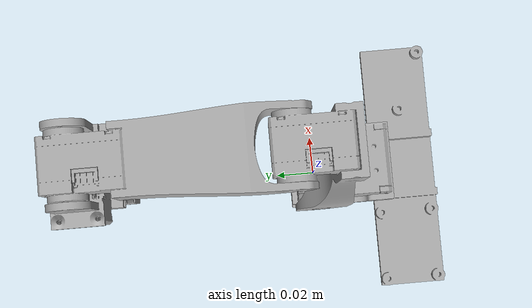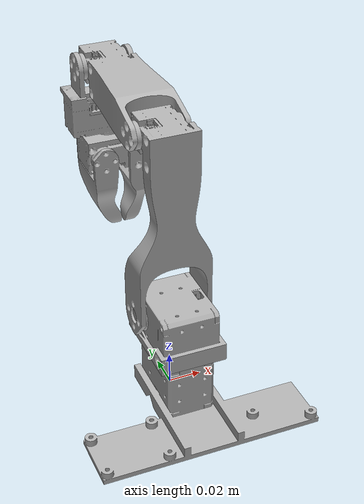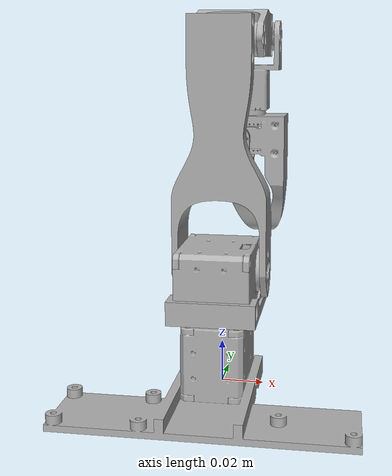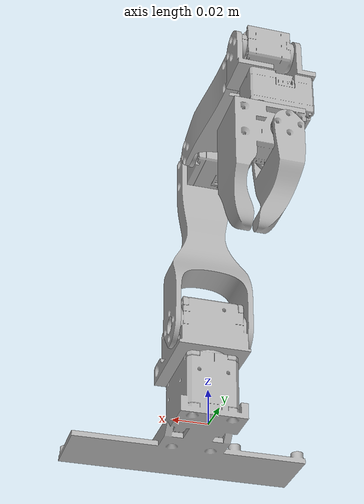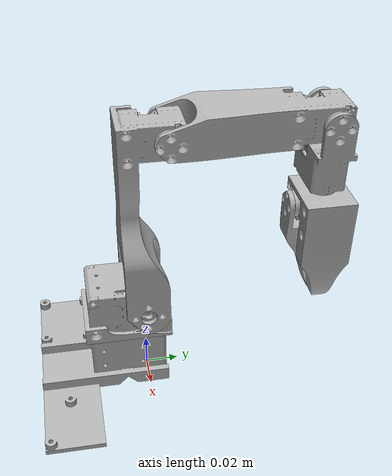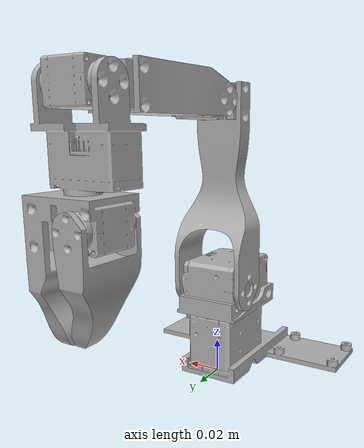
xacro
<?xml version="1.0" ?>
<robot name="low_cost_robot" xmlns:xacro="http://www.ros.org/wiki/xacro">

<xacro:include filename="$(find low_cost_robot_description)/urdf/materials.xacro" />
<xacro:include filename="$(find low_cost_robot_description)/urdf/low_cost_robot.trans" />
<xacro:include filename="$(find low_cost_robot_description)/urdf/low_cost_robot.gazebo" />
<link name="base_link">
  <inertial>
    <origin xyz="-0.00017023202404845418 -0.021341439639662032 0.014423161616418092" rpy="0 0 0"/>
    <mass value="0.5164575020815119"/>
    <inertia ixx="0.000304" iyy="0.000283" izz="0.000441" ixy="-2e-06" iyz="-6.2e-05" ixz="-1e-06"/>
  </inertial>
  <visual>
    <origin xyz="0 0 0" rpy="0 0 0"/>
    <geometry>
      <mesh filename="file://$(find low_cost_robot_description)/meshes/base_link.stl" scale="0.001 0.001 0.001"/>
    </geometry>
    <material name="silver"/>
  </visual>
  <collision>
    <origin xyz="0 0 0" rpy="0 0 0"/>
    <geometry>
      <mesh filename="file://$(find low_cost_robot_description)/meshes/base_link.stl" scale="0.001 0.001 0.001"/>
    </geometry>
  </collision>
</link>

<link name="link1_1">
  <inertial>
    <origin xyz="-0.0006216635769899589 -0.011914175885676576 0.015400174574576098" rpy="0 0 0"/>
    <mass value="0.3956063453928257"/>
    <inertia ixx="0.000112" iyy="7.5e-05" izz="0.000123" ixy="0.0" iyz="-1e-06" ixz="0.0"/>
  </inertial>
  <visual>
    <origin xyz="-0.0 -0.0 -0.039" rpy="0 0 0"/>
    <geometry>
      <mesh filename="file://$(find low_cost_robot_description)/meshes/link1_1.stl" scale="0.001 0.001 0.001"/>
    </geometry>
    <material name="silver"/>
  </visual>
  <collision>
    <origin xyz="-0.0 -0.0 -0.039" rpy="0 0 0"/>
    <geometry>
      <mesh filename="file://$(find low_cost_robot_description)/meshes/link1_1.stl" scale="0.001 0.001 0.001"/>
    </geometry>
  </collision>
</link>

<link name="link2_1">
  <inertial>
    <origin xyz="0.00015778948024297947 -0.0012168309893684582 0.07161179945761596" rpy="0 0 0"/>
    <mass value="0.3916070272991037"/>
    <inertia ixx="0.00052" iyy="0.000534" izz="8.4e-05" ixy="-1e-06" iyz="-3.7e-05" ixz="-2e-06"/>
  </inertial>
  <visual>
    <origin xyz="0.0002 0.0 -0.0563" rpy="0 0 0"/>
    <geometry>
      <mesh filename="file://$(find low_cost_robot_description)/meshes/link2_1.stl" scale="0.001 0.001 0.001"/>
    </geometry>
    <material name="silver"/>
  </visual>
  <collision>
    <origin xyz="0.0002 0.0 -0.0563" rpy="0 0 0"/>
    <geometry>
      <mesh filename="file://$(find low_cost_robot_description)/meshes/link2_1.stl" scale="0.001 0.001 0.001"/>
    </geometry>
  </collision>
</link>

<link name="link3_1">
  <inertial>
    <origin xyz="7.243666489899892e-05 0.05069893196527342 0.002850799344132765" rpy="0 0 0"/>
    <mass value="0.4404689720232285"/>
    <inertia ixx="0.000302" iyy="5.5e-05" izz="0.000322" ixy="-1e-06" iyz="-0.0" ixz="0.0"/>
  </inertial>
  <visual>
    <origin xyz="-5e-05 -0.014791 -0.164647" rpy="0 0 0"/>
    <geometry>
      <mesh filename="file://$(find low_cost_robot_description)/meshes/link3_1.stl" scale="0.001 0.001 0.001"/>
    </geometry>
    <material name="silver"/>
  </visual>
  <collision>
    <origin xyz="-5e-05 -0.014791 -0.164647" rpy="0 0 0"/>
    <geometry>
      <mesh filename="file://$(find low_cost_robot_description)/meshes/link3_1.stl" scale="0.001 0.001 0.001"/>
    </geometry>
  </collision>
</link>

<link name="link4_1">
  <inertial>
    <origin xyz="-0.00473855751324301 8.608301182447264e-06 -0.02657822907239915" rpy="0 0 0"/>
    <mass value="0.15464443104629289"/>
    <inertia ixx="2.4e-05" iyy="3.9e-05" izz="2.4e-05" ixy="0.0" iyz="0.0" ixz="-3e-06"/>
  </inertial>
  <visual>
    <origin xyz="-0.000175 -0.105258 -0.167394" rpy="0 0 0"/>
    <geometry>
      <mesh filename="file://$(find low_cost_robot_description)/meshes/link4_1.stl" scale="0.001 0.001 0.001"/>
    </geometry>
    <material name="silver"/>
  </visual>
  <collision>
    <origin xyz="-0.000175 -0.105258 -0.167394" rpy="0 0 0"/>
    <geometry>
      <mesh filename="file://$(find low_cost_robot_description)/meshes/link4_1.stl" scale="0.001 0.001 0.001"/>
    </geometry>
  </collision>
</link>

<link name="gripper_static_1">
  <inertial>
    <origin xyz="0.005441113698877747 0.00011563276687967528 -0.019052234932530082" rpy="0 0 0"/>
    <mass value="0.23008611256824127"/>
    <inertia ixx="6.9e-05" iyy="8.4e-05" izz="4.3e-05" ixy="-0.0" iyz="0.0" ixz="1.8e-05"/>
  </inertial>
  <visual>
    <origin xyz="-0.001528 -0.105265 -0.122394" rpy="0 0 0"/>
    <geometry>
      <mesh filename="file://$(find low_cost_robot_description)/meshes/gripper_static_1.stl" scale="0.001 0.001 0.001"/>
    </geometry>
    <material name="silver"/>
  </visual>
  <collision>
    <origin xyz="-0.001528 -0.105265 -0.122394" rpy="0 0 0"/>
    <geometry>
      <mesh filename="file://$(find low_cost_robot_description)/meshes/gripper_static_1.stl" scale="0.001 0.001 0.001"/>
    </geometry>
  </collision>
</link>

<link name="gripper_moving_1">
  <inertial>
    <origin xyz="0.0010956016218150169 0.00031090398683926435 -0.02511314835420593" rpy="0 0 0"/>
    <mass value="0.10060550172576842"/>
    <inertia ixx="2.7e-05" iyy="1.9e-05" izz="1.2e-05" ixy="-0.0" iyz="0.0" ixz="2e-06"/>
  </inertial>
  <visual>
    <origin xyz="0.005872 -0.105015 -0.109244" rpy="0 0 0"/>
    <geometry>
      <mesh filename="file://$(find low_cost_robot_description)/meshes/gripper_moving_1.stl" scale="0.001 0.001 0.001"/>
    </geometry>
    <material name="silver"/>
  </visual>
  <collision>
    <origin xyz="0.005872 -0.105015 -0.109244" rpy="0 0 0"/>
    <geometry>
      <mesh filename="file://$(find low_cost_robot_description)/meshes/gripper_moving_1.stl" scale="0.001 0.001 0.001"/>
    </geometry>
  </collision>
</link>

<joint name="joint1" type="continuous">
  <origin xyz="0.0 0.0 0.039" rpy="0 0 0"/>
  <parent link="base_link"/>
  <child link="link1_1"/>
  <axis xyz="0.0 0.0 1.0"/>
</joint>

<joint name="joint2" type="continuous">
  <origin xyz="-0.0002 -0.0 0.0173" rpy="0 0 0"/>
  <parent link="link1_1"/>
  <child link="link2_1"/>
  <axis xyz="-1.0 -0.0 0.0"/>
</joint>

<joint name="joint3" type="continuous">
  <origin xyz="0.00025 0.014791 0.108347" rpy="0 0 0"/>
  <parent link="link2_1"/>
  <child link="link3_1"/>
  <axis xyz="1.0 0.0 0.0"/>
</joint>

<joint name="joint4" type="continuous">
  <origin xyz="0.000125 0.090467 0.002747" rpy="0 0 0"/>
  <parent link="link3_1"/>
  <child link="link4_1"/>
  <axis xyz="1.0 0.0 0.0"/>
</joint>

<joint name="joint5" type="continuous">
  <origin xyz="0.001353 7e-06 -0.045" rpy="0 0 0"/>
  <parent link="link4_1"/>
  <child link="gripper_static_1"/>
  <axis xyz="0.0 0.0 -1.0"/>
</joint>

<joint name="joint_gripper" type="continuous">
  <origin xyz="-0.0074 -0.00025 -0.01315" rpy="0 0 0"/>
  <parent link="gripper_static_1"/>
  <child link="gripper_moving_1"/>
  <axis xyz="-0.0 -1.0 -0.0"/>
</joint>

</robot>

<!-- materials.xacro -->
<robot name="low_cost_robot" xmlns:xacro="http://www.ros.org/wiki/xacro" >

<material name="silver">
  <color rgba="0.700 0.700 0.700 1.000"/>
</material>

</robot>

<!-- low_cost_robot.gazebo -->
<robot name="low_cost_robot" xmlns:xacro="http://www.ros.org/wiki/xacro" >

<xacro:property name="body_color" value="Gazebo/Silver" />

<gazebo>
  <plugin name="control" filename="libgazebo_ros_control.so"/>
</gazebo>
<gazebo reference="base_link">
  <material>${body_color}</material>
  <mu1>0.2</mu1>
  <mu2>0.2</mu2>
  <self_collide>true</self_collide>
  <gravity>true</gravity>
</gazebo>

<gazebo reference="link1_1">
  <material>${body_color}</material>
  <mu1>0.2</mu1>
  <mu2>0.2</mu2>
  <self_collide>true</self_collide>
</gazebo>

<gazebo reference="link2_1">
  <material>${body_color}</material>
  <mu1>0.2</mu1>
  <mu2>0.2</mu2>
  <self_collide>true</self_collide>
</gazebo>

<gazebo reference="link3_1">
  <material>${body_color}</material>
  <mu1>0.2</mu1>
  <mu2>0.2</mu2>
  <self_collide>true</self_collide>
</gazebo>

<gazebo reference="link4_1">
  <material>${body_color}</material>
  <mu1>0.2</mu1>
  <mu2>0.2</mu2>
  <self_collide>true</self_collide>
</gazebo>

<gazebo reference="gripper_static_1">
  <material>${body_color}</material>
  <mu1>0.2</mu1>
  <mu2>0.2</mu2>
  <self_collide>true</self_collide>
</gazebo>

<gazebo reference="gripper_moving_1">
  <material>${body_color}</material>
  <mu1>0.2</mu1>
  <mu2>0.2</mu2>
  <self_collide>true</self_collide>
</gazebo>

</robot>
